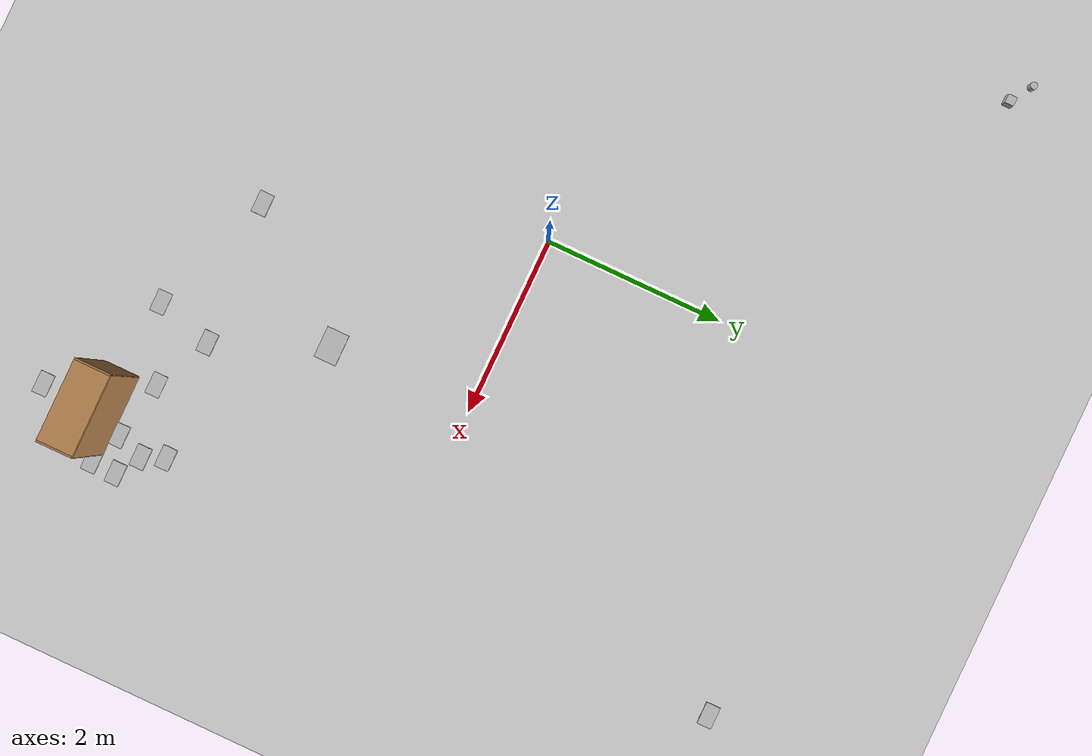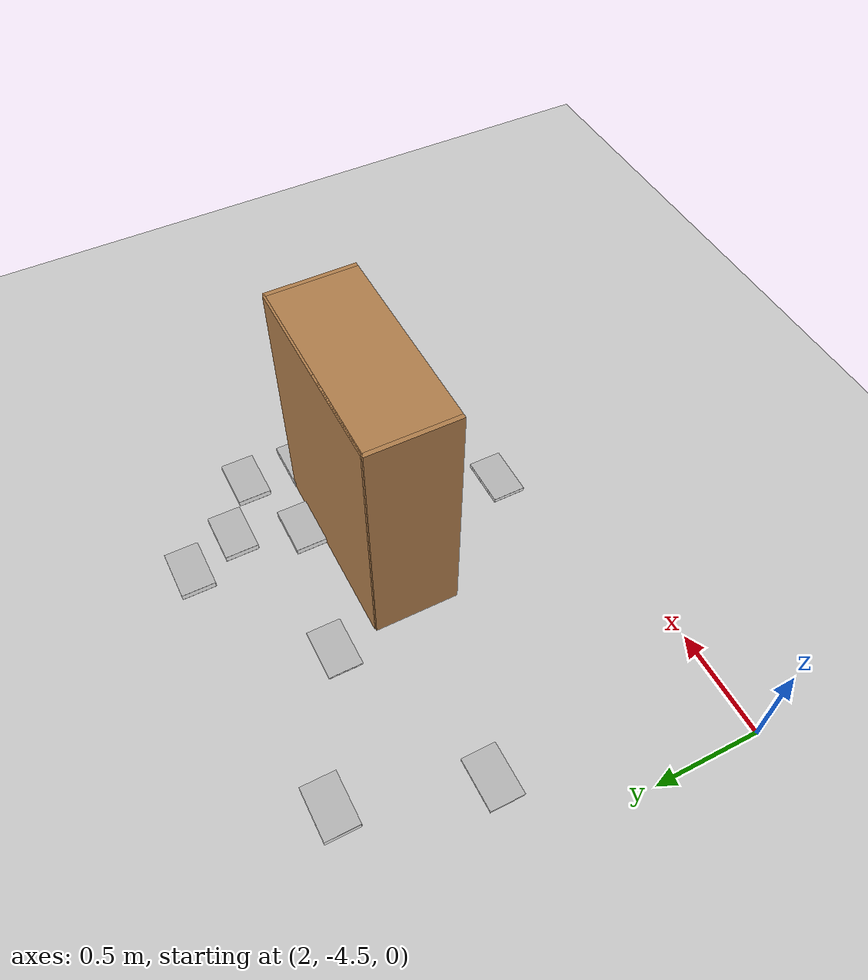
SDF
<sdf version="1.6">
 <world name="default">
  <light name="sun" type="directional">
   <pose>0 0 10 0 -0 0</pose>
   <diffuse>0.8 0.8 0.8 1</diffuse>
   <specular>0.1 0.1 0.1 1</specular>
   <attenuation>
    <range>1000</range>
    <constant>0.9</constant>
    <linear>0.01</linear>
    <quadratic>0.001</quadratic>
   </attenuation>
   <direction>-0.5 0.5 -1</direction>
  </light>
  <model name="ground_plane">
   <static>1</static>
   <link name="link">
    <collision name="collision">
     <geometry><plane><normal>0 0 1</normal><size>100 100</size></plane></geometry>
     <surface><friction><ode><mu>100</mu><mu2>50</mu2></ode></friction></surface>
    </collision>
    <visual name="visual">
     <cast_shadows>0</cast_shadows>
     <geometry><plane><normal>0 0 1</normal><size>100 100</size></plane></geometry>
     <material>
      <script><uri>file://media/materials/scripts/gazebo.material</uri><name>Gazebo/Grey</name></script>
     </material>
    </visual>
   </link>
  </model>
  <gravity>0 0 -9.8</gravity>
  <magnetic_field>6e-06 2.3e-05 -4.2e-05</magnetic_field>
  <atmosphere type="adiabatic"/>
  <physics name="default_physics" default="0" type="ode">
   <max_step_size>0.001</max_step_size>
   <real_time_factor>1</real_time_factor>
   <real_time_update_rate>1000</real_time_update_rate>
  </physics>
  <scene><ambient>0.4 0.4 0.4 1</ambient><background>0.7 0.7 0.7 1</background><shadows>1</shadows></scene>
  <spherical_coordinates>
   <surface_model>EARTH_WGS84</surface_model>
   <latitude_deg>0</latitude_deg>
   <longitude_deg>0</longitude_deg>
   <elevation>0</elevation>
   <heading_deg>0</heading_deg>
  </spherical_coordinates>
  <model name="bookshelf">
   <static>1</static>
   <link name="link">
    <inertial><mass>1</mass></inertial>
    <collision name="back">
     <pose>0 0.005 0.6 0 -0 0</pose>
     <geometry><box><size>0.9 0.01 1.2</size></box></geometry>
    </collision>
    <visual name="visual1">
     <pose>0 0.005 0.6 0 -0 0</pose>
     <geometry><box><size>0.9 0.01 1.2</size></box></geometry>
     <material>
      <script><uri>file://media/materials/scripts/gazebo.material</uri><name>Gazebo/Wood</name></script>
     </material>
    </visual>
    <collision name="left_side">
     <pose>0.45 -0.195 0.6 0 -0 0</pose>
     <geometry><box><size>0.02 0.4 1.2</size></box></geometry>
    </collision>
    <visual name="visual2">
     <pose>0.45 -0.195 0.6 0 -0 0</pose>
     <geometry><box><size>0.02 0.4 1.2</size></box></geometry>
     <material>
      <script><uri>file://media/materials/scripts/gazebo.material</uri><name>Gazebo/Wood</name></script>
     </material>
    </visual>
    <collision name="right_side">
     <pose>-0.45 -0.195 0.6 0 -0 0</pose>
     <geometry><box><size>0.02 0.4 1.2</size></box></geometry>
    </collision>
    <visual name="visual3">
     <pose>-0.45 -0.195 0.6 0 -0 0</pose>
     <geometry><box><size>0.02 0.4 1.2</size></box></geometry>
     <material>
      <script><uri>file://media/materials/scripts/gazebo.material</uri><name>Gazebo/Wood</name></script>
     </material>
    </visual>
    <collision name="bottom">
     <pose>0 -0.195 0.03 0 -0 0</pose>
     <geometry><box><size>0.88 0.4 0.06</size></box></geometry>
    </collision>
    <visual name="visual4">
     <pose>0 -0.195 0.03 0 -0 0</pose>
     <geometry><box><size>0.88 0.4 0.06</size></box></geometry>
     <material>
      <script><uri>file://media/materials/scripts/gazebo.material</uri><name>Gazebo/Wood</name></script>
     </material>
    </visual>
    <collision name="top">
     <pose>0 -0.195 1.19 0 -0 0</pose>
     <geometry><box><size>0.88 0.4 0.02</size></box></geometry>
    </collision>
    <visual name="visual5">
     <pose>0 -0.195 1.19 0 -0 0</pose>
     <geometry><box><size>0.88 0.4 0.02</size></box></geometry>
     <material>
      <script><uri>file://media/materials/scripts/gazebo.material</uri><name>Gazebo/Wood</name></script>
     </material>
    </visual>
    <collision name="low_shelf">
     <pose>0 -0.195 0.43 0 -0 0</pose>
     <geometry><box><size>0.88 0.4 0.02</size></box></geometry>
    </collision>
    <visual name="visual6">
     <pose>0 -0.195 0.43 0 -0 0</pose>
     <geometry><box><size>0.88 0.4 0.02</size></box></geometry>
     <material>
      <script><uri>file://media/materials/scripts/gazebo.material</uri><name>Gazebo/Wood</name></script>
     </material>
    </visual>
    <collision name="high_shelf">
     <pose>0 -0.195 0.8 0 -0 0</pose>
     <geometry><box><size>0.88 0.4 0.02</size></box></geometry>
    </collision>
    <visual name="visual7">
     <pose>0 -0.195 0.8 0 -0 0</pose>
     <geometry><box><size>0.88 0.4 0.02</size></box></geometry>
     <material>
      <script><uri>file://media/materials/scripts/gazebo.material</uri><name>Gazebo/Wood</name></script>
     </material>
    </visual>
   </link>
   <pose>3.6024 -3.3222 0 0 -0 0</pose>
  </model>
  <model name="book_10">
   <link name="cover">
    <pose>0 -0.000108 0.015405 0 -0 0</pose>
    <visual name="visual">
     <geometry><box><size>0.245 0.16 0.03</size></box></geometry>
     <material>
      <script>
       <uri>model://book_10/materials/scripts</uri>
       <uri>model://book_10/materials/textures</uri>
       <name>book_10</name>
      </script>
     </material>
    </visual>
    <collision name="collision"><geometry><box><size>0.245 0.16 0.03</size></box></geometry></collision>
   </link>
   <link name="page">
    <pose>0 0.000608 0.015405 0 -0 0</pose>
    <visual name="visual">
     <geometry><box><size>0.24502 0.15862 0.028</size></box></geometry>
     <material>
      <lighting>1</lighting>
      <ambient>1 1 1 1</ambient>
      <diffuse>1 1 1 1</diffuse>
      <specular>0.01 0.01 0.01 1</specular>
      <emissive>0 0 0 1</emissive>
      <shader type="vertex"><normal_map>__default__</normal_map></shader>
     </material>
    </visual>
    <collision name="collision"><geometry><box><size>0.245 0.16 0.03</size></box></geometry></collision>
   </link>
   <static>1</static>
   <pose>4.15878 -3.3895 0 0 -0 0</pose>
  </model>
  <model name="book_1">
   <link name="cover">
    <pose>0 -0.000108 0.015405 0 -0 0</pose>
    <visual name="visual">
     <geometry><box><size>0.245 0.16 0.03</size></box></geometry>
     <material>
      <script>
       <uri>model://book_1/materials/scripts</uri>
       <uri>model://book_1/materials/textures</uri>
       <name>book_1</name>
      </script>
     </material>
    </visual>
    <collision name="collision"><geometry><box><size>0.245 0.16 0.03</size></box></geometry></collision>
   </link>
   <link name="page">
    <pose>0 0.000608 0.015405 0 -0 0</pose>
    <visual name="visual">
     <geometry><box><size>0.24502 0.15862 0.028</size></box></geometry>
     <material>
      <lighting>1</lighting>
      <ambient>1 1 1 1</ambient>
      <diffuse>1 1 1 1</diffuse>
      <specular>0.01 0.01 0.01 1</specular>
      <emissive>0 0 0 1</emissive>
      <shader type="vertex"><normal_map>__default__</normal_map></shader>
     </material>
    </visual>
    <collision name="collision"><geometry><box><size>0.245 0.16 0.03</size></box></geometry></collision>
   </link>
   <static>1</static>
   <pose>4.17385 -3.10632 0 0 -0 0</pose>
  </model>
  <model name="book_12">
   <link name="cover">
    <pose>0 -0.000108 0.015405 0 -0 0</pose>
    <visual name="visual">
     <geometry><box><size>0.245 0.16 0.03</size></box></geometry>
     <material>
      <script>
       <uri>model://book_12/materials/scripts</uri>
       <uri>model://book_12/materials/textures</uri>
       <name>book_12</name>
      </script>
     </material>
    </visual>
    <collision name="collision"><geometry><box><size>0.245 0.16 0.03</size></box></geometry></collision>
   </link>
   <link name="page">
    <pose>0 0.000608 0.015405 0 -0 0</pose>
    <visual name="visual">
     <geometry><box><size>0.24502 0.15862 0.028</size></box></geometry>
     <material>
      <lighting>1</lighting>
      <ambient>1 1 1 1</ambient>
      <diffuse>1 1 1 1</diffuse>
      <specular>0.01 0.01 0.01 1</specular>
      <emissive>0 0 0 1</emissive>
      <shader type="vertex"><normal_map>__default__</normal_map></shader>
     </material>
    </visual>
    <collision name="collision"><geometry><box><size>0.245 0.16 0.03</size></box></geometry></collision>
   </link>
   <static>1</static>
   <pose>3.9057 -2.93898 0 0 -0 0</pose>
  </model>
  <model name="book_14">
   <link name="cover">
    <pose>0 -0.000108 0.015405 0 -0 0</pose>
    <visual name="visual">
     <geometry><box><size>0.245 0.16 0.03</size></box></geometry>
     <material>
      <script>
       <uri>model://book_14/materials/scripts</uri>
       <uri>model://book_14/materials/textures</uri>
       <name>book_14</name>
      </script>
     </material>
    </visual>
    <collision name="collision"><geometry><box><size>0.245 0.16 0.03</size></box></geometry></collision>
   </link>
   <link name="page">
    <pose>0 0.000608 0.015405 0 -0 0</pose>
    <visual name="visual">
     <geometry><box><size>0.24502 0.15862 0.028</size></box></geometry>
     <material>
      <lighting>1</lighting>
      <ambient>1 1 1 1</ambient>
      <diffuse>1 1 1 1</diffuse>
      <specular>0.01 0.01 0.01 1</specular>
      <emissive>0 0 0 1</emissive>
      <shader type="vertex"><normal_map>__default__</normal_map></shader>
     </material>
    </visual>
    <collision name="collision"><geometry><box><size>0.245 0.16 0.03</size></box></geometry></collision>
   </link>
   <static>1</static>
   <pose>3.80199 -2.69205 0 0 -0 0</pose>
  </model>
  <model name="book_17">
   <link name="cover">
    <pose>0 -0.000108 0.015405 0 -0 0</pose>
    <visual name="visual">
     <geometry><box><size>0.245 0.16 0.03</size></box></geometry>
     <material>
      <script>
       <uri>model://book_17/materials/scripts</uri>
       <uri>model://book_17/materials/textures</uri>
       <name>book_17</name>
      </script>
     </material>
    </visual>
    <collision name="collision"><geometry><box><size>0.245 0.16 0.03</size></box></geometry></collision>
   </link>
   <link name="page">
    <pose>0 0.000608 0.015405 0 -0 0</pose>
    <visual name="visual">
     <geometry><box><size>0.24502 0.15862 0.028</size></box></geometry>
     <material>
      <lighting>1</lighting>
      <ambient>1 1 1 1</ambient>
      <diffuse>1 1 1 1</diffuse>
      <specular>0.01 0.01 0.01 1</specular>
      <emissive>0 0 0 1</emissive>
      <shader type="vertex"><normal_map>__default__</normal_map></shader>
     </material>
    </visual>
    <collision name="collision"><geometry><box><size>0.245 0.16 0.03</size></box></geometry></collision>
   </link>
   <static>1</static>
   <pose>3.79352 -3.24546 0 0 -0 0</pose>
  </model>
  <model name="book_8">
   <link name="cover">
    <pose>0 -0.000108 0.005 0 -0 0</pose>
    <visual name="visual">
     <geometry><box><size>0.245 0.16 0.01</size></box></geometry>
     <material>
      <script>
       <uri>model://book_8/materials/scripts</uri>
       <uri>model://book_8/materials/textures</uri>
       <name>book_8</name>
      </script>
     </material>
    </visual>
    <collision name="collision"><geometry><box><size>0.245 0.16 0.01</size></box></geometry></collision>
   </link>
   <link name="page">
    <pose>0 0.000608 0.005 0 -0 0</pose>
    <visual name="visual">
     <geometry><box><size>0.24502 0.15862 0.008</size></box></geometry>
     <material>
      <lighting>1</lighting>
      <ambient>1 1 1 1</ambient>
      <diffuse>1 1 1 1</diffuse>
      <specular>0.01 0.01 0.01 1</specular>
      <emissive>0 0 0 1</emissive>
      <shader type="vertex"><normal_map>__default__</normal_map></shader>
     </material>
    </visual>
    <collision name="collision"><geometry><box><size>0.245 0.16 0.008</size></box></geometry></collision>
   </link>
   <static>1</static>
   <pose>2.3295 -3.44263 0 0 -0 0</pose>
  </model>
  <model name="book_9">
   <link name="cover">
    <pose>0 -0.000108 0.005 0 -0 0</pose>
    <visual name="visual">
     <geometry><box><size>0.245 0.16 0.01</size></box></geometry>
     <material>
      <script>
       <uri>model://book_9/materials/scripts</uri>
       <uri>model://book_9/materials/textures</uri>
       <name>book_9</name>
      </script>
     </material>
    </visual>
    <collision name="collision"><geometry><box><size>0.245 0.16 0.01</size></box></geometry></collision>
   </link>
   <link name="page">
    <pose>0 0.000608 0.005 0 -0 0</pose>
    <visual name="visual">
     <geometry><box><size>0.24502 0.15862 0.008</size></box></geometry>
     <material>
      <lighting>1</lighting>
      <ambient>1 1 1 1</ambient>
      <diffuse>1 1 1 1</diffuse>
      <specular>0.01 0.01 0.01 1</specular>
      <emissive>0 0 0 1</emissive>
      <shader type="vertex"><normal_map>__default__</normal_map></shader>
     </material>
    </visual>
    <collision name="collision"><geometry><box><size>0.245 0.16 0.008</size></box></geometry></collision>
   </link>
   <static>1</static>
   <pose>3.14391 -3.11532 0 0 -0 0</pose>
  </model>
  <model name="book_18">
   <link name="cover">
    <pose>0 -0.000108 0.015405 0 -0 0</pose>
    <visual name="visual">
     <geometry><box><size>0.245 0.16 0.03</size></box></geometry>
     <material>
      <script>
       <uri>model://book_18/materials/scripts</uri>
       <uri>model://book_18/materials/textures</uri>
       <name>book_18</name>
      </script>
     </material>
    </visual>
    <collision name="collision"><geometry><box><size>0.245 0.16 0.03</size></box></geometry></collision>
   </link>
   <link name="page">
    <pose>0 0.000608 0.015405 0 -0 0</pose>
    <visual name="visual">
     <geometry><box><size>0.24502 0.15862 0.028</size></box></geometry>
     <material>
      <lighting>1</lighting>
      <ambient>1 1 1 1</ambient>
      <diffuse>1 1 1 1</diffuse>
      <specular>0.01 0.01 0.01 1</specular>
      <emissive>0 0 0 1</emissive>
      <shader type="vertex"><normal_map>__default__</normal_map></shader>
     </material>
    </visual>
    <collision name="collision"><geometry><box><size>0.245 0.16 0.03</size></box></geometry></collision>
   </link>
   <static>1</static>
   <pose>2.50908 -2.81431 0 0 -0 0</pose>
  </model>
  <model name="book_16">
   <link name="cover">
    <pose>0 -0.000108 0.015405 0 -0 0</pose>
    <visual name="visual">
     <geometry><box><size>0.245 0.16 0.03</size></box></geometry>
     <material>
      <script>
       <uri>model://book_16/materials/scripts</uri>
       <uri>model://book_16/materials/textures</uri>
       <name>book_16</name>
      </script>
     </material>
    </visual>
    <collision name="collision"><geometry><box><size>0.245 0.16 0.03</size></box></geometry></collision>
   </link>
   <link name="page">
    <pose>0 0.000608 0.015405 0 -0 0</pose>
    <visual name="visual">
     <geometry><box><size>0.24502 0.15862 0.028</size></box></geometry>
     <material>
      <lighting>1</lighting>
      <ambient>1 1 1 1</ambient>
      <diffuse>1 1 1 1</diffuse>
      <specular>0.01 0.01 0.01 1</specular>
      <emissive>0 0 0 1</emissive>
      <shader type="vertex"><normal_map>__default__</normal_map></shader>
     </material>
    </visual>
    <collision name="collision"><geometry><box><size>0.245 0.16 0.03</size></box></geometry></collision>
   </link>
   <static>1</static>
   <pose>0.928029 -2.90968 0 0 -0 0</pose>
  </model>
  <model name="newspaper_2">
   <link name="link_0">
    <visual name="visual">
     <geometry><box><size>0.35 0.25 0.02</size></box></geometry>
     <material>
      <script>
       <uri>model://newspaper_2/materials/scripts</uri>
       <uri>model://newspaper_2/materials/textures</uri>
       <name>newspaper_2</name>
      </script>
     </material>
    </visual>
    <collision name="collision"><geometry><box><size>0.35 0.25 0.02</size></box></geometry></collision>
   </link>
   <static>1</static>
   <pose>1.98455 -1.61022 0 0 -0 0</pose>
  </model>
  <model name="book_3">
   <link name="cover">
    <pose>0 -0.000108 0.01 0 -0 0</pose>
    <visual name="visual">
     <geometry><box><size>0.245 0.16 0.02</size></box></geometry>
     <material>
      <script>
       <uri>model://book_3/materials/scripts</uri>
       <uri>model://book_3/materials/textures</uri>
       <name>book_3</name>
      </script>
     </material>
    </visual>
    <collision name="collision"><geometry><box><size>0.245 0.16 0.02</size></box></geometry></collision>
   </link>
   <link name="page">
    <pose>0 0.000608 0.01 0 -0 0</pose>
    <visual name="visual">
     <geometry><box><size>0.24502 0.15862 0.018</size></box></geometry>
     <material>
      <lighting>1</lighting>
      <ambient>1 1 1 1</ambient>
      <diffuse>1 1 1 1</diffuse>
      <specular>0.01 0.01 0.01 1</specular>
      <emissive>0 0 0 1</emissive>
      <shader type="vertex"><normal_map>__default__</normal_map></shader>
     </material>
    </visual>
    <collision name="collision"><geometry><box><size>0.245 0.16 0.018</size></box></geometry></collision>
   </link>
   <static>1</static>
   <pose>3.64 -4.20182 0 0 -0 0</pose>
  </model>
  <model name="book_19">
   <link name="cover">
    <pose>0 -0.000108 0.015405 0 -0 0</pose>
    <visual name="visual">
     <geometry><box><size>0.245 0.16 0.03</size></box></geometry>
     <material>
      <script>
       <uri>model://book_19/materials/scripts</uri>
       <uri>model://book_19/materials/textures</uri>
       <name>book_19</name>
      </script>
     </material>
    </visual>
    <collision name="collision"><geometry><box><size>0.245 0.16 0.03</size></box></geometry></collision>
   </link>
   <link name="page">
    <pose>0 0.000608 0.015405 0 -0 0</pose>
    <visual name="visual">
     <geometry><box><size>0.24502 0.15862 0.028</size></box></geometry>
     <material>
      <lighting>1</lighting>
      <ambient>1 1 1 1</ambient>
      <diffuse>1 1 1 1</diffuse>
      <specular>0.01 0.01 0.01 1</specular>
      <emissive>0 0 0 1</emissive>
      <shader type="vertex"><normal_map>__default__</normal_map></shader>
     </material>
    </visual>
    <collision name="collision"><geometry><box><size>0.245 0.16 0.03</size></box></geometry></collision>
   </link>
   <static>1</static>
   <pose>3.82569 3.66723 0 0 -0 0</pose>
  </model>
  <model name="tea_box">
   <link name="link">
    <pose>0 0 0.075 0 -0 0</pose>
    <visual name="visual">
     <geometry><box><size>0.1 0.1 0.15</size></box></geometry>
     <material>
      <script>
       <uri>model://tea_box/materials/scripts</uri>
       <uri>model://tea_box/materials/textures</uri>
       <name>tea_pat</name>
      </script>
     </material>
    </visual>
    <collision name="collision"><geometry><box><size>0.1 0.1 0.15</size></box></geometry></collision>
   </link>
   <static>1</static>
   <pose>-3.39634 3.77456 0 0 -0 0</pose>
  </model>
  <model name="coffee_box">
   <link name="link_0">
    <visual name="visual">
     <pose>0 0 0.06 0 -0 0</pose>
     <geometry><cylinder><radius>0.04</radius><length>0.12</length></cylinder></geometry>
     <material>
      <script>
       <uri>model://coffee_box/materials/scripts</uri>
       <uri>model://coffee_box/materials/textures</uri>
       <name>coffee_pat</name>
      </script>
     </material>
    </visual>
    <collision name="collision">
     <geometry><cylinder><radius>0.04</radius><length>0.12</length></cylinder></geometry>
    </collision>
   </link>
   <static>1</static>
   <pose>-3.64321 3.93386 0 0 -0 0</pose>
  </model>
 </world>
</sdf>
